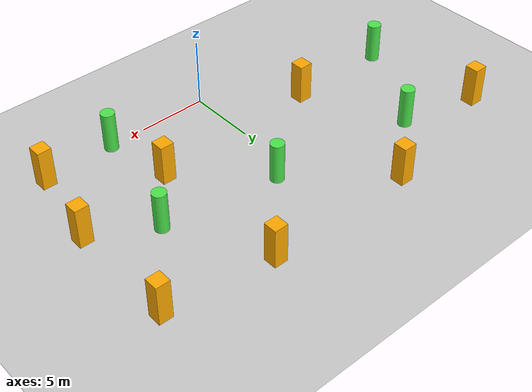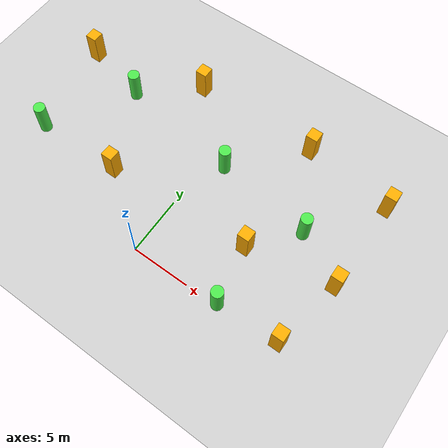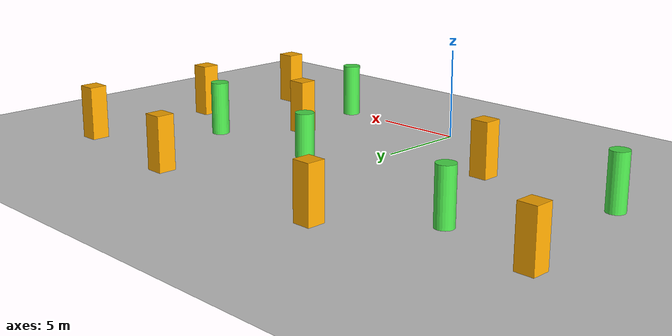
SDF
<sdf version="1.7">
 <world name="default">
  <model name="ground_plane">
   <static>1</static>
   <link name="link">
    <collision name="collision">
     <geometry><plane><normal>0 0 1</normal><size>100 100</size></plane></geometry>
     <surface>
      <contact><collide_bitmask>65535</collide_bitmask></contact>
      <friction><ode><mu>100</mu><mu2>50</mu2></ode></friction>
     </surface>
    </collision>
    <visual name="visual">
     <cast_shadows>0</cast_shadows>
     <geometry><plane><normal>0 0 1</normal><size>100 100</size></plane></geometry>
     <material>
      <script><uri>file://media/materials/scripts/gazebo.material</uri><name>Gazebo/Grey</name></script>
     </material>
    </visual>
   </link>
  </model>
  <model name="Pillar_1x3_clone">
   <link name="link_0">
    <inertial>
     <mass>1</mass>
     <inertia><ixx>0.145833</ixx><ixy>0</ixy><ixz>0</ixz><iyy>0.145833</iyy><iyz>0</iyz><izz>0.125</izz></inertia>
    </inertial>
    <pose>0 0 1.5 0 -0 0</pose>
    <kinematic>1</kinematic>
    <visual name="visual">
     <geometry><cylinder><radius>0.5</radius><length>3</length></cylinder></geometry>
     <material>
      <lighting>1</lighting>
      <script><uri>file://media/materials/scripts/gazebo.material</uri><name>Gazebo/Grey</name></script>
      <shader type="pixel"><normal_map>__default__</normal_map></shader>
      <ambient>0.3 0.9 0.3 1</ambient>
      <diffuse>0.7 0.7 0.7 1</diffuse>
      <specular>0.01 0.01 0.01 1</specular>
      <emissive>0 0 0 1</emissive>
     </material>
    </visual>
    <collision name="collision">
     <geometry><cylinder><radius>0.5</radius><length>3</length></cylinder></geometry>
     <surface>
      <friction>
       <ode><mu>1</mu><mu2>1</mu2><fdir1>0 0 0</fdir1><slip1>0</slip1><slip2>0</slip2></ode>
       <torsional>
        <coefficient>1</coefficient>
        <patch_radius>0</patch_radius>
        <surface_radius>0</surface_radius>
        <use_patch_radius>1</use_patch_radius>
        <ode><slip>0</slip></ode>
       </torsional>
      </friction>
      <bounce><restitution_coefficient>0</restitution_coefficient><threshold>1e+06</threshold></bounce>
      <contact>
       <collide_without_contact>0</collide_without_contact>
       <collide_without_contact_bitmask>1</collide_without_contact_bitmask>
       <collide_bitmask>1</collide_bitmask>
       <ode>
        <soft_cfm>0</soft_cfm>
        <soft_erp>0.2</soft_erp>
        <kp>1e+13</kp>
        <kd>1</kd>
        <max_vel>0.01</max_vel>
        <min_depth>0</min_depth>
       </ode>
       <bullet>
        <split_impulse>1</split_impulse>
        <split_impulse_penetration_threshold>-0.01</split_impulse_penetration_threshold>
        <soft_cfm>0</soft_cfm>
        <soft_erp>0.2</soft_erp>
        <kp>1e+13</kp>
        <kd>1</kd>
       </bullet>
      </contact>
     </surface>
    </collision>
   </link>
   <static>0</static>
   <pose>-13.3936 4.3404 0 0 -0 0</pose>
  </model>
  <model name="Pillar_1x3_clone_0">
   <link name="link_0">
    <inertial>
     <mass>1</mass>
     <inertia><ixx>0.145833</ixx><ixy>0</ixy><ixz>0</ixz><iyy>0.145833</iyy><iyz>0</iyz><izz>0.125</izz></inertia>
    </inertial>
    <pose>0 0 1.5 0 -0 0</pose>
    <kinematic>1</kinematic>
    <visual name="visual">
     <geometry><cylinder><radius>0.5</radius><length>3</length></cylinder></geometry>
     <material>
      <lighting>1</lighting>
      <script><uri>file://media/materials/scripts/gazebo.material</uri><name>Gazebo/Grey</name></script>
      <shader type="pixel"><normal_map>__default__</normal_map></shader>
      <ambient>0.3 0.9 0.3 1</ambient>
      <diffuse>0.7 0.7 0.7 1</diffuse>
      <specular>0.01 0.01 0.01 1</specular>
      <emissive>0 0 0 1</emissive>
     </material>
    </visual>
    <collision name="collision">
     <geometry><cylinder><radius>0.5</radius><length>3</length></cylinder></geometry>
     <surface>
      <friction>
       <ode><mu>1</mu><mu2>1</mu2><fdir1>0 0 0</fdir1><slip1>0</slip1><slip2>0</slip2></ode>
       <torsional>
        <coefficient>1</coefficient>
        <patch_radius>0</patch_radius>
        <surface_radius>0</surface_radius>
        <use_patch_radius>1</use_patch_radius>
        <ode><slip>0</slip></ode>
       </torsional>
      </friction>
      <bounce><restitution_coefficient>0</restitution_coefficient><threshold>1e+06</threshold></bounce>
      <contact>
       <collide_without_contact>0</collide_without_contact>
       <collide_without_contact_bitmask>1</collide_without_contact_bitmask>
       <collide_bitmask>1</collide_bitmask>
       <ode>
        <soft_cfm>0</soft_cfm>
        <soft_erp>0.2</soft_erp>
        <kp>1e+13</kp>
        <kd>1</kd>
        <max_vel>0.01</max_vel>
        <min_depth>0</min_depth>
       </ode>
       <bullet>
        <split_impulse>1</split_impulse>
        <split_impulse_penetration_threshold>-0.01</split_impulse_penetration_threshold>
        <soft_cfm>0</soft_cfm>
        <soft_erp>0.2</soft_erp>
        <kp>1e+13</kp>
        <kd>1</kd>
       </bullet>
      </contact>
     </surface>
    </collision>
   </link>
   <static>0</static>
   <pose>1.4587 10.0062 0 0 -0 0</pose>
  </model>
  <model name="Pillar_1x3_clone_1">
   <link name="link_0">
    <inertial>
     <mass>1</mass>
     <inertia><ixx>0.145833</ixx><ixy>0</ixy><ixz>0</ixz><iyy>0.145833</iyy><iyz>0</iyz><izz>0.125</izz></inertia>
    </inertial>
    <pose>0 0 1.5 0 -0 0</pose>
    <kinematic>1</kinematic>
    <visual name="visual">
     <geometry><cylinder><radius>0.5</radius><length>3</length></cylinder></geometry>
     <material>
      <lighting>1</lighting>
      <script><uri>file://media/materials/scripts/gazebo.material</uri><name>Gazebo/Grey</name></script>
      <shader type="pixel"><normal_map>__default__</normal_map></shader>
      <ambient>0.3 0.9 0.3 1</ambient>
      <diffuse>0.7 0.7 0.7 1</diffuse>
      <specular>0.01 0.01 0.01 1</specular>
      <emissive>0 0 0 1</emissive>
     </material>
    </visual>
    <collision name="collision">
     <geometry><cylinder><radius>0.5</radius><length>3</length></cylinder></geometry>
     <surface>
      <friction>
       <ode><mu>1</mu><mu2>1</mu2><fdir1>0 0 0</fdir1><slip1>0</slip1><slip2>0</slip2></ode>
       <torsional>
        <coefficient>1</coefficient>
        <patch_radius>0</patch_radius>
        <surface_radius>0</surface_radius>
        <use_patch_radius>1</use_patch_radius>
        <ode><slip>0</slip></ode>
       </torsional>
      </friction>
      <bounce><restitution_coefficient>0</restitution_coefficient><threshold>1e+06</threshold></bounce>
      <contact>
       <collide_without_contact>0</collide_without_contact>
       <collide_without_contact_bitmask>1</collide_without_contact_bitmask>
       <collide_bitmask>1</collide_bitmask>
       <ode>
        <soft_cfm>0</soft_cfm>
        <soft_erp>0.2</soft_erp>
        <kp>1e+13</kp>
        <kd>1</kd>
        <max_vel>0.01</max_vel>
        <min_depth>0</min_depth>
       </ode>
       <bullet>
        <split_impulse>1</split_impulse>
        <split_impulse_penetration_threshold>-0.01</split_impulse_penetration_threshold>
        <soft_cfm>0</soft_cfm>
        <soft_erp>0.2</soft_erp>
        <kp>1e+13</kp>
        <kd>1</kd>
       </bullet>
      </contact>
     </surface>
    </collision>
   </link>
   <static>0</static>
   <pose>7.7824 0.150237 0 0 -0 0</pose>
  </model>
  <model name="Pillar_1x3_clone_3">
   <link name="link_0">
    <inertial>
     <mass>1</mass>
     <inertia><ixx>0.145833</ixx><ixy>0</ixy><ixz>0</ixz><iyy>0.145833</iyy><iyz>0</iyz><izz>0.125</izz></inertia>
    </inertial>
    <pose>0 0 1.5 0 -0 0</pose>
    <kinematic>1</kinematic>
    <visual name="visual">
     <geometry><cylinder><radius>0.5</radius><length>3</length></cylinder></geometry>
     <material>
      <lighting>1</lighting>
      <script><uri>file://media/materials/scripts/gazebo.material</uri><name>Gazebo/Grey</name></script>
      <shader type="pixel"><normal_map>__default__</normal_map></shader>
      <ambient>0.3 0.9 0.3 1</ambient>
      <diffuse>0.7 0.7 0.7 1</diffuse>
      <specular>0.01 0.01 0.01 1</specular>
      <emissive>0 0 0 1</emissive>
     </material>
    </visual>
    <collision name="collision">
     <geometry><cylinder><radius>0.5</radius><length>3</length></cylinder></geometry>
     <surface>
      <friction>
       <ode><mu>1</mu><mu2>1</mu2><fdir1>0 0 0</fdir1><slip1>0</slip1><slip2>0</slip2></ode>
       <torsional>
        <coefficient>1</coefficient>
        <patch_radius>0</patch_radius>
        <surface_radius>0</surface_radius>
        <use_patch_radius>1</use_patch_radius>
        <ode><slip>0</slip></ode>
       </torsional>
      </friction>
      <bounce><restitution_coefficient>0</restitution_coefficient><threshold>1e+06</threshold></bounce>
      <contact>
       <collide_without_contact>0</collide_without_contact>
       <collide_without_contact_bitmask>1</collide_without_contact_bitmask>
       <collide_bitmask>1</collide_bitmask>
       <ode>
        <soft_cfm>0</soft_cfm>
        <soft_erp>0.2</soft_erp>
        <kp>1e+13</kp>
        <kd>1</kd>
        <max_vel>0.01</max_vel>
        <min_depth>0</min_depth>
       </ode>
       <bullet>
        <split_impulse>1</split_impulse>
        <split_impulse_penetration_threshold>-0.01</split_impulse_penetration_threshold>
        <soft_cfm>0</soft_cfm>
        <soft_erp>0.2</soft_erp>
        <kp>1e+13</kp>
        <kd>1</kd>
       </bullet>
      </contact>
     </surface>
    </collision>
   </link>
   <static>0</static>
   <pose>-9.19401 11.5415 0 0 -0 0</pose>
  </model>
  <model name="Pillar_1x3_clone_4">
   <link name="link_0">
    <inertial>
     <mass>1</mass>
     <inertia><ixx>0.145833</ixx><ixy>0</ixy><ixz>0</ixz><iyy>0.145833</iyy><iyz>0</iyz><izz>0.125</izz></inertia>
    </inertial>
    <pose>0 0 1.5 0 -0 0</pose>
    <kinematic>1</kinematic>
    <visual name="visual">
     <geometry><cylinder><radius>0.5</radius><length>3</length></cylinder></geometry>
     <material>
      <lighting>1</lighting>
      <script><uri>file://media/materials/scripts/gazebo.material</uri><name>Gazebo/Grey</name></script>
      <shader type="pixel"><normal_map>__default__</normal_map></shader>
      <ambient>0.3 0.9 0.3 1</ambient>
      <diffuse>0.7 0.7 0.7 1</diffuse>
      <specular>0.01 0.01 0.01 1</specular>
      <emissive>0 0 0 1</emissive>
     </material>
    </visual>
    <collision name="collision">
     <geometry><cylinder><radius>0.5</radius><length>3</length></cylinder></geometry>
     <surface>
      <friction>
       <ode><mu>1</mu><mu2>1</mu2><fdir1>0 0 0</fdir1><slip1>0</slip1><slip2>0</slip2></ode>
       <torsional>
        <coefficient>1</coefficient>
        <patch_radius>0</patch_radius>
        <surface_radius>0</surface_radius>
        <use_patch_radius>1</use_patch_radius>
        <ode><slip>0</slip></ode>
       </torsional>
      </friction>
      <bounce><restitution_coefficient>0</restitution_coefficient><threshold>1e+06</threshold></bounce>
      <contact>
       <collide_without_contact>0</collide_without_contact>
       <collide_without_contact_bitmask>1</collide_without_contact_bitmask>
       <collide_bitmask>1</collide_bitmask>
       <ode>
        <soft_cfm>0</soft_cfm>
        <soft_erp>0.2</soft_erp>
        <kp>1e+13</kp>
        <kd>1</kd>
        <max_vel>0.01</max_vel>
        <min_depth>0</min_depth>
       </ode>
       <bullet>
        <split_impulse>1</split_impulse>
        <split_impulse_penetration_threshold>-0.01</split_impulse_penetration_threshold>
        <soft_cfm>0</soft_cfm>
        <soft_erp>0.2</soft_erp>
        <kp>1e+13</kp>
        <kd>1</kd>
       </bullet>
      </contact>
     </surface>
    </collision>
   </link>
   <static>0</static>
   <pose>9.9224 8.7781 0 0 -0 0</pose>
  </model>
  <model name="Box1x1x3_clone_1">
   <link name="link_0">
    <inertial>
     <mass>1</mass>
     <inertia>
      <ixx>0.166667</ixx>
      <ixy>0</ixy>
      <ixz>0</ixz>
      <iyy>0.166667</iyy>
      <iyz>0</iyz>
      <izz>0.166667</izz>
     </inertia>
    </inertial>
    <pose>0 0 1.5 0 -0 0</pose>
    <kinematic>1</kinematic>
    <visual name="visual">
     <geometry><box><size>1 1 3</size></box></geometry>
     <material>
      <lighting>1</lighting>
      <script><uri>file://media/materials/scripts/gazebo.material</uri><name>Gazebo/Grey</name></script>
      <shader type="pixel"><normal_map>__default__</normal_map></shader>
      <ambient>1 0.667 0 1</ambient>
      <diffuse>0.7 0.7 0.7 1</diffuse>
      <specular>0.01 0.01 0.01 1</specular>
      <emissive>0 0 0 1</emissive>
     </material>
    </visual>
    <collision name="collision">
     <geometry><box><size>1 1 3</size></box></geometry>
     <surface>
      <friction>
       <ode><mu>1</mu><mu2>1</mu2><fdir1>0 0 0</fdir1><slip1>0</slip1><slip2>0</slip2></ode>
       <torsional>
        <coefficient>1</coefficient>
        <patch_radius>0</patch_radius>
        <surface_radius>0</surface_radius>
        <use_patch_radius>1</use_patch_radius>
        <ode><slip>0</slip></ode>
       </torsional>
      </friction>
      <bounce><restitution_coefficient>0</restitution_coefficient><threshold>1e+06</threshold></bounce>
      <contact>
       <collide_without_contact>0</collide_without_contact>
       <collide_without_contact_bitmask>1</collide_without_contact_bitmask>
       <collide_bitmask>1</collide_bitmask>
       <ode>
        <soft_cfm>0</soft_cfm>
        <soft_erp>0.2</soft_erp>
        <kp>1e+13</kp>
        <kd>1</kd>
        <max_vel>0.01</max_vel>
        <min_depth>0</min_depth>
       </ode>
       <bullet>
        <split_impulse>1</split_impulse>
        <split_impulse_penetration_threshold>-0.01</split_impulse_penetration_threshold>
        <soft_cfm>0</soft_cfm>
        <soft_erp>0.2</soft_erp>
        <kp>1e+13</kp>
        <kd>1</kd>
       </bullet>
      </contact>
     </surface>
    </collision>
   </link>
   <static>0</static>
   <pose>-5.8307 4.4474 0 0 -0 0</pose>
  </model>
  <model name="Box1x1x3_clone_2">
   <link name="link_0">
    <inertial>
     <mass>1</mass>
     <inertia>
      <ixx>0.166667</ixx>
      <ixy>0</ixy>
      <ixz>0</ixz>
      <iyy>0.166667</iyy>
      <iyz>0</iyz>
      <izz>0.166667</izz>
     </inertia>
    </inertial>
    <pose>0 0 1.5 0 -0 0</pose>
    <kinematic>1</kinematic>
    <visual name="visual">
     <geometry><box><size>1 1 3</size></box></geometry>
     <material>
      <lighting>1</lighting>
      <script><uri>file://media/materials/scripts/gazebo.material</uri><name>Gazebo/Grey</name></script>
      <shader type="pixel"><normal_map>__default__</normal_map></shader>
      <ambient>1 0.667 0 1</ambient>
      <diffuse>0.7 0.7 0.7 1</diffuse>
      <specular>0.01 0.01 0.01 1</specular>
      <emissive>0 0 0 1</emissive>
     </material>
    </visual>
    <collision name="collision">
     <geometry><box><size>1 1 3</size></box></geometry>
     <surface>
      <friction>
       <ode><mu>1</mu><mu2>1</mu2><fdir1>0 0 0</fdir1><slip1>0</slip1><slip2>0</slip2></ode>
       <torsional>
        <coefficient>1</coefficient>
        <patch_radius>0</patch_radius>
        <surface_radius>0</surface_radius>
        <use_patch_radius>1</use_patch_radius>
        <ode><slip>0</slip></ode>
       </torsional>
      </friction>
      <bounce><restitution_coefficient>0</restitution_coefficient><threshold>1e+06</threshold></bounce>
      <contact>
       <collide_without_contact>0</collide_without_contact>
       <collide_without_contact_bitmask>1</collide_without_contact_bitmask>
       <collide_bitmask>1</collide_bitmask>
       <ode>
        <soft_cfm>0</soft_cfm>
        <soft_erp>0.2</soft_erp>
        <kp>1e+13</kp>
        <kd>1</kd>
        <max_vel>0.01</max_vel>
        <min_depth>0</min_depth>
       </ode>
       <bullet>
        <split_impulse>1</split_impulse>
        <split_impulse_penetration_threshold>-0.01</split_impulse_penetration_threshold>
        <soft_cfm>0</soft_cfm>
        <soft_erp>0.2</soft_erp>
        <kp>1e+13</kp>
        <kd>1</kd>
       </bullet>
      </contact>
     </surface>
    </collision>
   </link>
   <static>0</static>
   <pose>6.90194 5.09623 0 0 -0 0</pose>
  </model>
  <model name="Box1x1x3_clone_3">
   <link name="link_0">
    <inertial>
     <mass>1</mass>
     <inertia>
      <ixx>0.166667</ixx>
      <ixy>0</ixy>
      <ixz>0</ixz>
      <iyy>0.166667</iyy>
      <iyz>0</iyz>
      <izz>0.166667</izz>
     </inertia>
    </inertial>
    <pose>0 0 1.5 0 -0 0</pose>
    <kinematic>1</kinematic>
    <visual name="visual">
     <geometry><box><size>1 1 3</size></box></geometry>
     <material>
      <lighting>1</lighting>
      <script><uri>file://media/materials/scripts/gazebo.material</uri><name>Gazebo/Grey</name></script>
      <shader type="pixel"><normal_map>__default__</normal_map></shader>
      <ambient>1 0.667 0 1</ambient>
      <diffuse>0.7 0.7 0.7 1</diffuse>
      <specular>0.01 0.01 0.01 1</specular>
      <emissive>0 0 0 1</emissive>
     </material>
    </visual>
    <collision name="collision">
     <geometry><box><size>1 1 3</size></box></geometry>
     <surface>
      <friction>
       <ode><mu>1</mu><mu2>1</mu2><fdir1>0 0 0</fdir1><slip1>0</slip1><slip2>0</slip2></ode>
       <torsional>
        <coefficient>1</coefficient>
        <patch_radius>0</patch_radius>
        <surface_radius>0</surface_radius>
        <use_patch_radius>1</use_patch_radius>
        <ode><slip>0</slip></ode>
       </torsional>
      </friction>
      <bounce><restitution_coefficient>0</restitution_coefficient><threshold>1e+06</threshold></bounce>
      <contact>
       <collide_without_contact>0</collide_without_contact>
       <collide_without_contact_bitmask>1</collide_without_contact_bitmask>
       <collide_bitmask>1</collide_bitmask>
       <ode>
        <soft_cfm>0</soft_cfm>
        <soft_erp>0.2</soft_erp>
        <kp>1e+13</kp>
        <kd>1</kd>
        <max_vel>0.01</max_vel>
        <min_depth>0</min_depth>
       </ode>
       <bullet>
        <split_impulse>1</split_impulse>
        <split_impulse_penetration_threshold>-0.01</split_impulse_penetration_threshold>
        <soft_cfm>0</soft_cfm>
        <soft_erp>0.2</soft_erp>
        <kp>1e+13</kp>
        <kd>1</kd>
       </bullet>
      </contact>
     </surface>
    </collision>
   </link>
   <static>0</static>
   <pose>6.45388 15.4722 0 0 -0 0</pose>
  </model>
  <model name="Box1x1x3_clone_5">
   <link name="link_0">
    <inertial>
     <mass>1</mass>
     <inertia>
      <ixx>0.166667</ixx>
      <ixy>0</ixy>
      <ixz>0</ixz>
      <iyy>0.166667</iyy>
      <iyz>0</iyz>
      <izz>0.166667</izz>
     </inertia>
    </inertial>
    <pose>0 0 1.5 0 -0 0</pose>
    <kinematic>1</kinematic>
    <visual name="visual">
     <geometry><box><size>1 1 3</size></box></geometry>
     <material>
      <lighting>1</lighting>
      <script><uri>file://media/materials/scripts/gazebo.material</uri><name>Gazebo/Grey</name></script>
      <shader type="pixel"><normal_map>__default__</normal_map></shader>
      <ambient>1 0.667 0 1</ambient>
      <diffuse>0.7 0.7 0.7 1</diffuse>
      <specular>0.01 0.01 0.01 1</specular>
      <emissive>0 0 0 1</emissive>
     </material>
    </visual>
    <collision name="collision">
     <geometry><box><size>1 1 3</size></box></geometry>
     <surface>
      <friction>
       <ode><mu>1</mu><mu2>1</mu2><fdir1>0 0 0</fdir1><slip1>0</slip1><slip2>0</slip2></ode>
       <torsional>
        <coefficient>1</coefficient>
        <patch_radius>0</patch_radius>
        <surface_radius>0</surface_radius>
        <use_patch_radius>1</use_patch_radius>
        <ode><slip>0</slip></ode>
       </torsional>
      </friction>
      <bounce><restitution_coefficient>0</restitution_coefficient><threshold>1e+06</threshold></bounce>
      <contact>
       <collide_without_contact>0</collide_without_contact>
       <collide_without_contact_bitmask>1</collide_without_contact_bitmask>
       <collide_bitmask>1</collide_bitmask>
       <ode>
        <soft_cfm>0</soft_cfm>
        <soft_erp>0.2</soft_erp>
        <kp>1e+13</kp>
        <kd>1</kd>
        <max_vel>0.01</max_vel>
        <min_depth>0</min_depth>
       </ode>
       <bullet>
        <split_impulse>1</split_impulse>
        <split_impulse_penetration_threshold>-0.01</split_impulse_penetration_threshold>
        <soft_cfm>0</soft_cfm>
        <soft_erp>0.2</soft_erp>
        <kp>1e+13</kp>
        <kd>1</kd>
       </bullet>
      </contact>
     </surface>
    </collision>
   </link>
   <static>0</static>
   <pose>-14.7957 12.9069 0 0 -0 0</pose>
  </model>
  <model name="Box1x1x3_clone_7">
   <link name="link_0">
    <inertial>
     <mass>1</mass>
     <inertia>
      <ixx>0.166667</ixx>
      <ixy>0</ixy>
      <ixz>0</ixz>
      <iyy>0.166667</iyy>
      <iyz>0</iyz>
      <izz>0.166667</izz>
     </inertia>
    </inertial>
    <pose>0 0 1.5 0 -0 0</pose>
    <kinematic>1</kinematic>
    <visual name="visual">
     <geometry><box><size>1 1 3</size></box></geometry>
     <material>
      <lighting>1</lighting>
      <script><uri>file://media/materials/scripts/gazebo.material</uri><name>Gazebo/Grey</name></script>
      <shader type="pixel"><normal_map>__default__</normal_map></shader>
      <ambient>1 0.667 0 1</ambient>
      <diffuse>0.7 0.7 0.7 1</diffuse>
      <specular>0.01 0.01 0.01 1</specular>
      <emissive>0 0 0 1</emissive>
     </material>
    </visual>
    <collision name="collision">
     <geometry><box><size>1 1 3</size></box></geometry>
     <surface>
      <friction>
       <ode><mu>1</mu><mu2>1</mu2><fdir1>0 0 0</fdir1><slip1>0</slip1><slip2>0</slip2></ode>
       <torsional>
        <coefficient>1</coefficient>
        <patch_radius>0</patch_radius>
        <surface_radius>0</surface_radius>
        <use_patch_radius>1</use_patch_radius>
        <ode><slip>0</slip></ode>
       </torsional>
      </friction>
      <bounce><restitution_coefficient>0</restitution_coefficient><threshold>1e+06</threshold></bounce>
      <contact>
       <collide_without_contact>0</collide_without_contact>
       <collide_without_contact_bitmask>1</collide_without_contact_bitmask>
       <collide_bitmask>1</collide_bitmask>
       <ode>
        <soft_cfm>0</soft_cfm>
        <soft_erp>0.2</soft_erp>
        <kp>1e+13</kp>
        <kd>1</kd>
        <max_vel>0.01</max_vel>
        <min_depth>0</min_depth>
       </ode>
       <bullet>
        <split_impulse>1</split_impulse>
        <split_impulse_penetration_threshold>-0.01</split_impulse_penetration_threshold>
        <soft_cfm>0</soft_cfm>
        <soft_erp>0.2</soft_erp>
        <kp>1e+13</kp>
        <kd>1</kd>
       </bullet>
      </contact>
     </surface>
    </collision>
   </link>
   <static>0</static>
   <pose>13.0502 0.380527 0 0 -0 0</pose>
  </model>
  <model name="Box1x1x3_clone_8">
   <link name="link_0">
    <inertial>
     <mass>1</mass>
     <inertia>
      <ixx>0.166667</ixx>
      <ixy>0</ixy>
      <ixz>0</ixz>
      <iyy>0.166667</iyy>
      <iyz>0</iyz>
      <izz>0.166667</izz>
     </inertia>
    </inertial>
    <pose>0 0 1.5 0 -0 0</pose>
    <kinematic>1</kinematic>
    <visual name="visual">
     <geometry><box><size>1 1 3</size></box></geometry>
     <material>
      <lighting>1</lighting>
      <script><uri>file://media/materials/scripts/gazebo.material</uri><name>Gazebo/Grey</name></script>
      <shader type="pixel"><normal_map>__default__</normal_map></shader>
      <ambient>1 0.667 0 1</ambient>
      <diffuse>0.7 0.7 0.7 1</diffuse>
      <specular>0.01 0.01 0.01 1</specular>
      <emissive>0 0 0 1</emissive>
     </material>
    </visual>
    <collision name="collision">
     <geometry><box><size>1 1 3</size></box></geometry>
     <surface>
      <friction>
       <ode><mu>1</mu><mu2>1</mu2><fdir1>0 0 0</fdir1><slip1>0</slip1><slip2>0</slip2></ode>
       <torsional>
        <coefficient>1</coefficient>
        <patch_radius>0</patch_radius>
        <surface_radius>0</surface_radius>
        <use_patch_radius>1</use_patch_radius>
        <ode><slip>0</slip></ode>
       </torsional>
      </friction>
      <bounce><restitution_coefficient>0</restitution_coefficient><threshold>1e+06</threshold></bounce>
      <contact>
       <collide_without_contact>0</collide_without_contact>
       <collide_without_contact_bitmask>1</collide_without_contact_bitmask>
       <collide_bitmask>1</collide_bitmask>
       <ode>
        <soft_cfm>0</soft_cfm>
        <soft_erp>0.2</soft_erp>
        <kp>1e+13</kp>
        <kd>1</kd>
        <max_vel>0.01</max_vel>
        <min_depth>0</min_depth>
       </ode>
       <bullet>
        <split_impulse>1</split_impulse>
        <split_impulse_penetration_threshold>-0.01</split_impulse_penetration_threshold>
        <soft_cfm>0</soft_cfm>
        <soft_erp>0.2</soft_erp>
        <kp>1e+13</kp>
        <kd>1</kd>
       </bullet>
      </contact>
     </surface>
    </collision>
   </link>
   <static>0</static>
   <pose>14.2148 14.4512 0 0 -0 0</pose>
  </model>
  <model name="Box1x1x3_clone_13">
   <link name="link_0">
    <inertial>
     <mass>1</mass>
     <inertia>
      <ixx>0.166667</ixx>
      <ixy>0</ixy>
      <ixz>0</ixz>
      <iyy>0.166667</iyy>
      <iyz>0</iyz>
      <izz>0.166667</izz>
     </inertia>
    </inertial>
    <pose>0 0 1.5 0 -0 0</pose>
    <kinematic>1</kinematic>
    <visual name="visual">
     <geometry><box><size>1 1 3</size></box></geometry>
     <material>
      <lighting>1</lighting>
      <script><uri>file://media/materials/scripts/gazebo.material</uri><name>Gazebo/Grey</name></script>
      <shader type="pixel"><normal_map>__default__</normal_map></shader>
      <ambient>1 0.667 0 1</ambient>
      <diffuse>0.7 0.7 0.7 1</diffuse>
      <specular>0.01 0.01 0.01 1</specular>
      <emissive>0 0 0 1</emissive>
     </material>
    </visual>
    <collision name="collision">
     <geometry><box><size>1 1 3</size></box></geometry>
     <surface>
      <friction>
       <ode><mu>1</mu><mu2>1</mu2><fdir1>0 0 0</fdir1><slip1>0</slip1><slip2>0</slip2></ode>
       <torsional>
        <coefficient>1</coefficient>
        <patch_radius>0</patch_radius>
        <surface_radius>0</surface_radius>
        <use_patch_radius>1</use_patch_radius>
        <ode><slip>0</slip></ode>
       </torsional>
      </friction>
      <bounce><restitution_coefficient>0</restitution_coefficient><threshold>1e+06</threshold></bounce>
      <contact>
       <collide_without_contact>0</collide_without_contact>
       <collide_without_contact_bitmask>1</collide_without_contact_bitmask>
       <collide_bitmask>1</collide_bitmask>
       <ode>
        <soft_cfm>0</soft_cfm>
        <soft_erp>0.2</soft_erp>
        <kp>1e+13</kp>
        <kd>1</kd>
        <max_vel>0.01</max_vel>
        <min_depth>0</min_depth>
       </ode>
       <bullet>
        <split_impulse>1</split_impulse>
        <split_impulse_penetration_threshold>-0.01</split_impulse_penetration_threshold>
        <soft_cfm>0</soft_cfm>
        <soft_erp>0.2</soft_erp>
        <kp>1e+13</kp>
        <kd>1</kd>
       </bullet>
      </contact>
     </surface>
    </collision>
   </link>
   <static>0</static>
   <pose>-4.618 15.4593 0 0 -0 0</pose>
  </model>
  <model name="Box1x1x3_clone_14">
   <link name="link_0">
    <inertial>
     <mass>1</mass>
     <inertia>
      <ixx>0.166667</ixx>
      <ixy>0</ixy>
      <ixz>0</ixz>
      <iyy>0.166667</iyy>
      <iyz>0</iyz>
      <izz>0.166667</izz>
     </inertia>
    </inertial>
    <pose>0 0 1.5 0 -0 0</pose>
    <kinematic>1</kinematic>
    <visual name="visual">
     <geometry><box><size>1 1 3</size></box></geometry>
     <material>
      <lighting>1</lighting>
      <script><uri>file://media/materials/scripts/gazebo.material</uri><name>Gazebo/Grey</name></script>
      <shader type="pixel"><normal_map>__default__</normal_map></shader>
      <ambient>1 0.667 0 1</ambient>
      <diffuse>0.7 0.7 0.7 1</diffuse>
      <specular>0.01 0.01 0.01 1</specular>
      <emissive>0 0 0 1</emissive>
     </material>
    </visual>
    <collision name="collision">
     <geometry><box><size>1 1 3</size></box></geometry>
     <surface>
      <friction>
       <ode><mu>1</mu><mu2>1</mu2><fdir1>0 0 0</fdir1><slip1>0</slip1><slip2>0</slip2></ode>
       <torsional>
        <coefficient>1</coefficient>
        <patch_radius>0</patch_radius>
        <surface_radius>0</surface_radius>
        <use_patch_radius>1</use_patch_radius>
        <ode><slip>0</slip></ode>
       </torsional>
      </friction>
      <bounce><restitution_coefficient>0</restitution_coefficient><threshold>1e+06</threshold></bounce>
      <contact>
       <collide_without_contact>0</collide_without_contact>
       <collide_without_contact_bitmask>1</collide_without_contact_bitmask>
       <collide_bitmask>1</collide_bitmask>
       <ode>
        <soft_cfm>0</soft_cfm>
        <soft_erp>0.2</soft_erp>
        <kp>1e+13</kp>
        <kd>1</kd>
        <max_vel>0.01</max_vel>
        <min_depth>0</min_depth>
       </ode>
       <bullet>
        <split_impulse>1</split_impulse>
        <split_impulse_penetration_threshold>-0.01</split_impulse_penetration_threshold>
        <soft_cfm>0</soft_cfm>
        <soft_erp>0.2</soft_erp>
        <kp>1e+13</kp>
        <kd>1</kd>
       </bullet>
      </contact>
     </surface>
    </collision>
   </link>
   <static>0</static>
   <pose>14.1986 6.42469 0 0 -0 0</pose>
  </model>
 </world>
</sdf>
